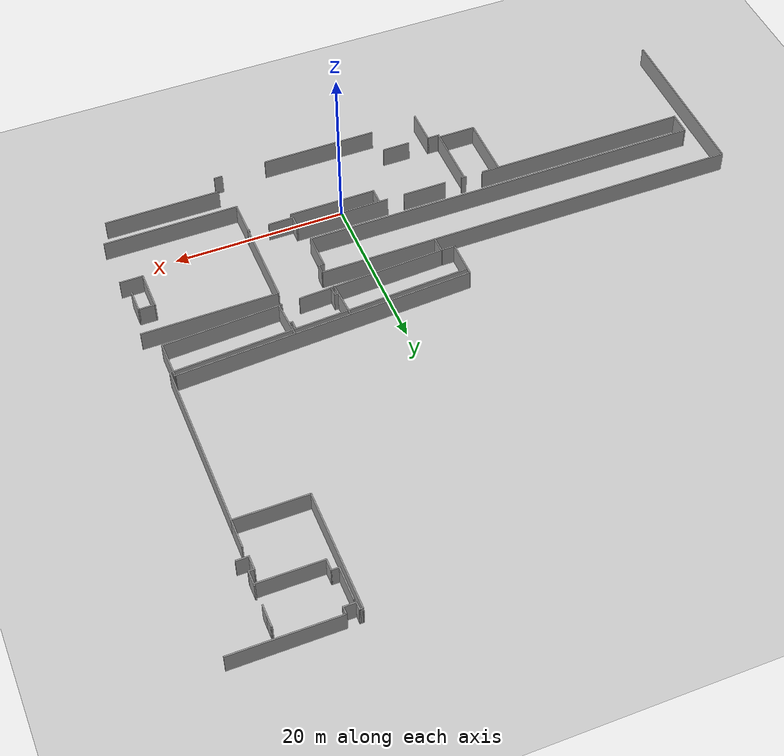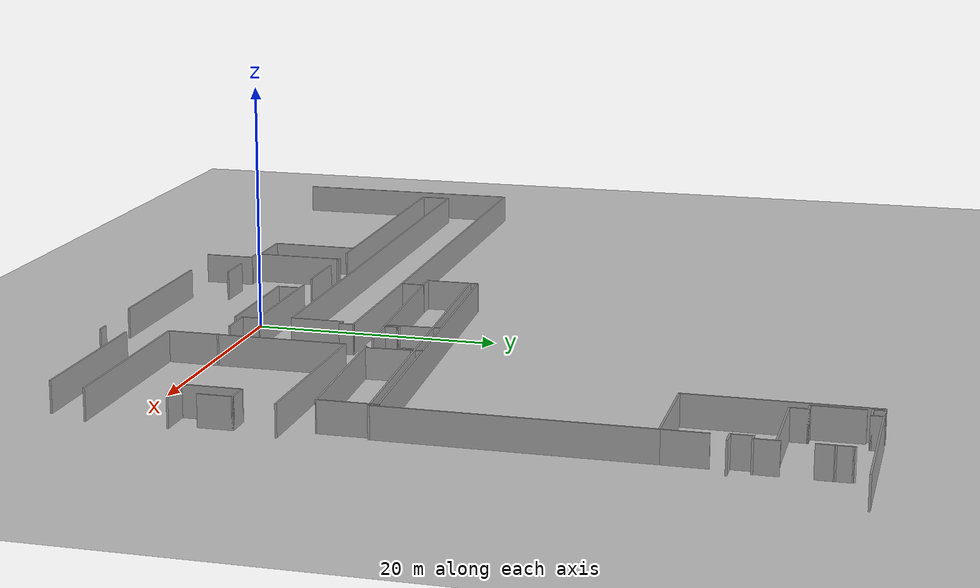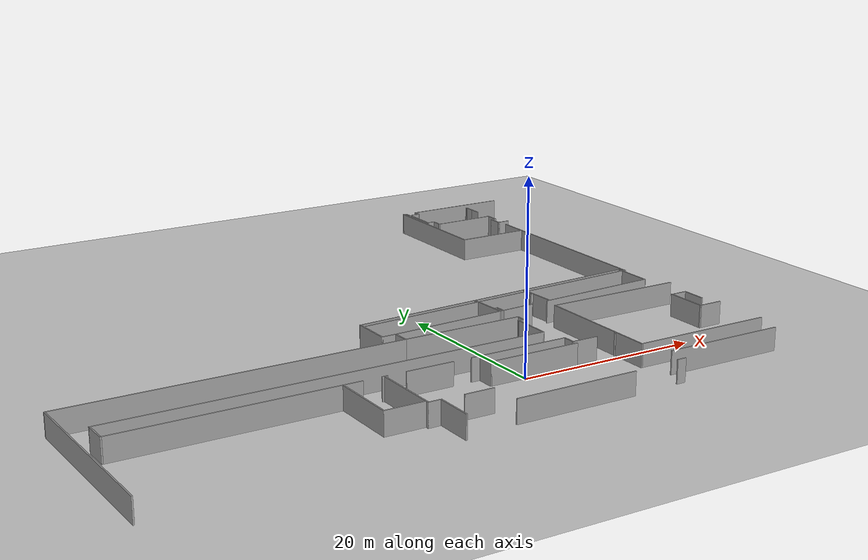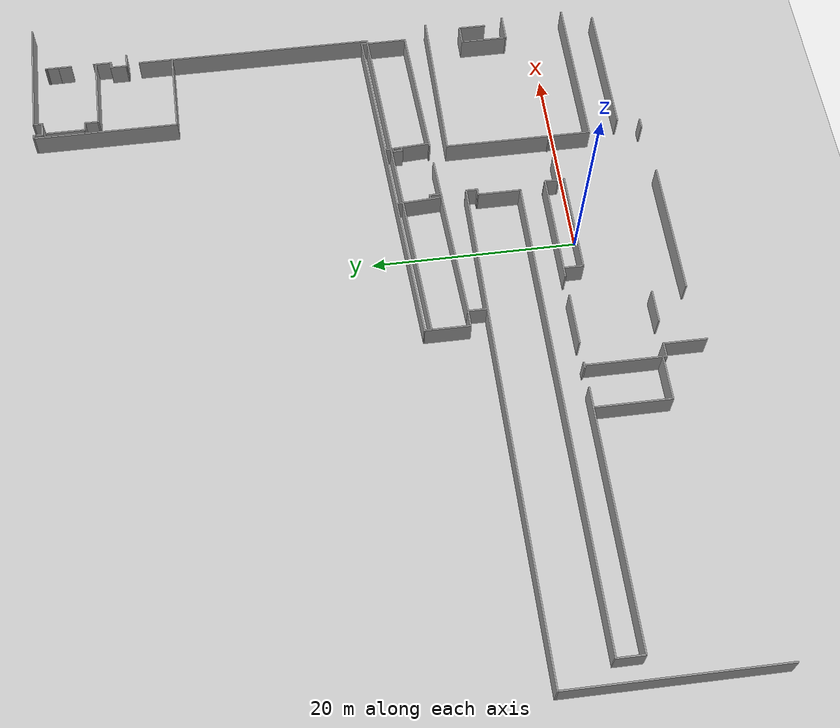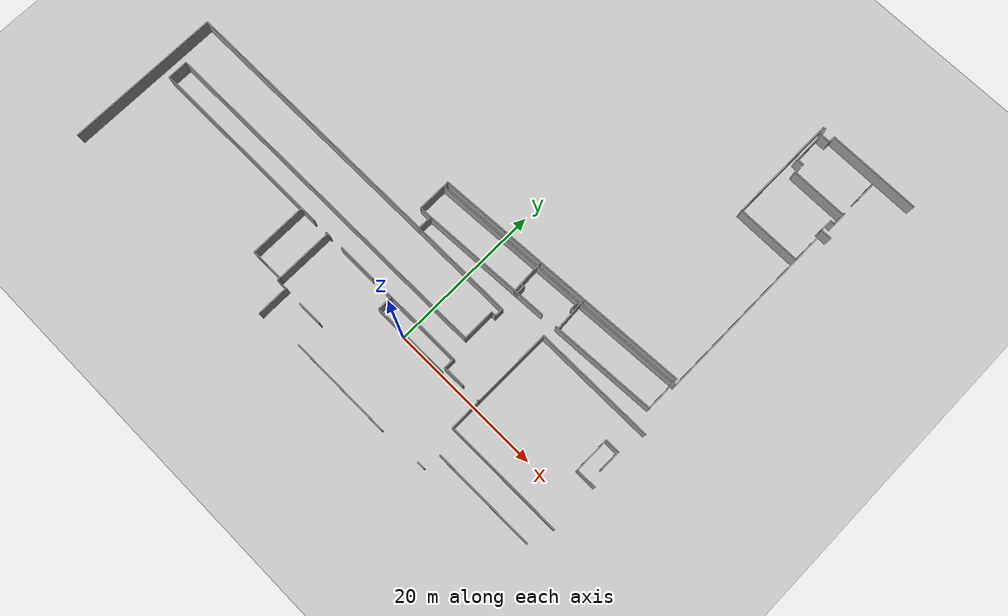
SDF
<sdf version="1.6">
 <world name="default">
  <model name="ground_plane">
   <static>1</static>
   <link name="link">
    <collision name="collision">
     <geometry><plane><normal>0 0 1</normal><size>100 100</size></plane></geometry>
     <surface><friction><ode><mu>100</mu><mu2>50</mu2></ode></friction></surface>
    </collision>
    <visual name="visual">
     <cast_shadows>0</cast_shadows>
     <geometry><plane><normal>0 0 1</normal><size>100 100</size></plane></geometry>
     <material>
      <script><uri>file://media/materials/scripts/gazebo.material</uri><name>Gazebo/Grey</name></script>
     </material>
    </visual>
   </link>
  </model>
  <model name="SEH_v11">
   <pose>0.537033 1.18809 0 0 -0 0</pose>
   <link name="Wall_101">
    <pose>8.32083 -0.436183 0 0 -0 0</pose>
    <visual name="Wall_101_Visual_0">
     <pose>-1.24875 0 1.25 0 -0 0</pose>
     <geometry><box><size>3.0025 0.15 2.5</size></box></geometry>
     <material>
      <script><uri>file://media/materials/scripts/gazebo.material</uri><name>Gazebo/Grey</name></script>
      <ambient>1 1 1 1</ambient>
     </material>
     <meta><layer>0</layer></meta>
    </visual>
    <collision name="Wall_101_Collision_0">
     <geometry><box><size>3.0025 0.15 2.5</size></box></geometry>
     <pose>-1.24875 0 1.25 0 -0 0</pose>
    </collision>
    <visual name="Wall_101_Visual_1">
     <pose>2.61125 0 1.25 0 -0 0</pose>
     <geometry><box><size>0.277496 0.15 2.5</size></box></geometry>
     <material>
      <script><uri>file://media/materials/scripts/gazebo.material</uri><name>Gazebo/Grey</name></script>
      <ambient>1 1 1 1</ambient>
     </material>
     <meta><layer>0</layer></meta>
    </visual>
    <collision name="Wall_101_Collision_1">
     <geometry><box><size>0.277496 0.15 2.5</size></box></geometry>
     <pose>2.61125 0 1.25 0 -0 0</pose>
    </collision>
   </link>
   <link name="Wall_102">
    <collision name="Wall_102_Collision">
     <geometry><box><size>4.25 0.15 2.5</size></box></geometry>
     <pose>0 0 1.25 0 -0 0</pose>
    </collision>
    <visual name="Wall_102_Visual">
     <pose>0 0 1.25 0 -0 0</pose>
     <geometry><box><size>4.25 0.15 2.5</size></box></geometry>
     <material>
      <script><uri>file://media/materials/scripts/gazebo.material</uri><name>Gazebo/Grey</name></script>
      <ambient>1 1 1 1</ambient>
     </material>
     <meta><layer>0</layer></meta>
    </visual>
    <pose>10.9958 -2.48618 0 0 0 -1.5708</pose>
   </link>
   <link name="Wall_103">
    <collision name="Wall_103_Collision">
     <geometry><box><size>15.75 0.15 2.5</size></box></geometry>
     <pose>0 0 1.25 0 -0 0</pose>
    </collision>
    <visual name="Wall_103_Visual">
     <pose>0 0 1.25 0 -0 0</pose>
     <geometry><box><size>15.75 0.15 2.5</size></box></geometry>
     <material>
      <script><uri>file://media/materials/scripts/gazebo.material</uri><name>Gazebo/Grey</name></script>
      <ambient>1 1 1 1</ambient>
     </material>
     <meta><layer>0</layer></meta>
    </visual>
    <pose>18.7958 -4.53618 0 0 -0 0</pose>
   </link>
   <link name="Wall_105">
    <collision name="Wall_105_Collision">
     <geometry><box><size>2.75 0.15 2.5</size></box></geometry>
     <pose>0 0 1.25 0 -0 0</pose>
    </collision>
    <visual name="Wall_105_Visual">
     <pose>0 0 1.25 0 -0 0</pose>
     <geometry><box><size>2.75 0.15 2.5</size></box></geometry>
     <material>
      <script><uri>file://media/materials/scripts/gazebo.material</uri><name>Gazebo/Grey</name></script>
      <ambient>1 1 1 1</ambient>
     </material>
     <meta><layer>0</layer></meta>
    </visual>
    <pose>25.2958 1.81382 0 0 -0 3.14159</pose>
   </link>
   <link name="Wall_106">
    <collision name="Wall_106_Collision">
     <geometry><box><size>4.75 0.15 2.5</size></box></geometry>
     <pose>0 0 1.25 0 -0 0</pose>
    </collision>
    <visual name="Wall_106_Visual">
     <pose>0 0 1.25 0 -0 0</pose>
     <geometry><box><size>4.75 0.15 2.5</size></box></geometry>
     <material>
      <script><uri>file://media/materials/scripts/gazebo.material</uri><name>Gazebo/Grey</name></script>
      <ambient>1 1 1 1</ambient>
     </material>
     <meta><layer>0</layer></meta>
    </visual>
    <pose>23.9958 4.11382 0 0 -0 1.5708</pose>
   </link>
   <link name="Wall_107">
    <collision name="Wall_107_Collision">
     <geometry><box><size>2 0.15 2.5</size></box></geometry>
     <pose>0 0 1.25 0 -0 0</pose>
    </collision>
    <visual name="Wall_107_Visual">
     <pose>0 0 1.25 0 -0 0</pose>
     <geometry><box><size>2 0.15 2.5</size></box></geometry>
     <material>
      <script><uri>file://media/materials/scripts/gazebo.material</uri><name>Gazebo/Grey</name></script>
      <ambient>1 1 1 1</ambient>
     </material>
     <meta><layer>0</layer></meta>
    </visual>
    <pose>24.9208 6.41382 0 0 -0 0</pose>
   </link>
   <link name="Wall_108">
    <collision name="Wall_108_Collision">
     <geometry><box><size>2.75 0.15 2.5</size></box></geometry>
     <pose>0 0 1.25 0 -0 0</pose>
    </collision>
    <visual name="Wall_108_Visual">
     <pose>0 0 1.25 0 -0 0</pose>
     <geometry><box><size>2.75 0.15 2.5</size></box></geometry>
     <material>
      <script><uri>file://media/materials/scripts/gazebo.material</uri><name>Gazebo/Grey</name></script>
      <ambient>1 1 1 1</ambient>
     </material>
     <meta><layer>0</layer></meta>
    </visual>
    <pose>25.8458 5.11382 0 0 0 -1.5708</pose>
   </link>
   <link name="Wall_167">
    <collision name="Wall_167_Collision">
     <geometry><box><size>13.5 0.15 2.5</size></box></geometry>
     <pose>0 0 1.25 0 -0 0</pose>
    </collision>
    <visual name="Wall_167_Visual">
     <pose>0 0 1.25 0 -0 0</pose>
     <geometry><box><size>13.5 0.15 2.5</size></box></geometry>
     <material>
      <script><uri>file://media/materials/scripts/gazebo.material</uri><name>Gazebo/Grey</name></script>
      <ambient>1 1 1 1</ambient>
     </material>
     <meta><layer>0</layer></meta>
    </visual>
    <pose>18.8711 -7.64779 0 0 -0 0</pose>
   </link>
   <link name="Wall_170">
    <collision name="Wall_170_Collision">
     <geometry><box><size>1 0.15 2.5</size></box></geometry>
     <pose>0 0 1.25 0 -0 0</pose>
    </collision>
    <visual name="Wall_170_Visual">
     <pose>0 0 1.25 0 -0 0</pose>
     <geometry><box><size>1 0.15 2.5</size></box></geometry>
     <material>
      <script><uri>file://media/materials/scripts/gazebo.material</uri><name>Gazebo/Grey</name></script>
      <ambient>1 1 1 1</ambient>
     </material>
     <meta><layer>0</layer></meta>
    </visual>
    <pose>11.4592 -9.91088 0 0 -0 3.14159</pose>
   </link>
   <link name="Wall_182">
    <collision name="Wall_182_Collision">
     <geometry><box><size>1.5 0.15 2.5</size></box></geometry>
     <pose>0 0 1.25 0 -0 0</pose>
    </collision>
    <visual name="Wall_182_Visual">
     <pose>0 0 1.25 0 -0 0</pose>
     <geometry><box><size>1.5 0.15 2.5</size></box></geometry>
     <material>
      <script><uri>file://media/materials/scripts/gazebo.material</uri><name>Gazebo/Grey</name></script>
      <ambient>1 1 1 1</ambient>
     </material>
     <meta><layer>0</layer></meta>
    </visual>
    <pose>5.64583 0.238817 0 0 -0 1.5708</pose>
   </link>
   <link name="Wall_183">
    <pose>-18.4042 0.913817 0 0 -0 3.14159</pose>
    <visual name="Wall_183_Visual_0">
     <pose>-18.5546 0 1.25 0 -0 0</pose>
     <geometry><box><size>11.1407 0.15 2.5</size></box></geometry>
     <material>
      <script><uri>file://media/materials/scripts/gazebo.material</uri><name>Gazebo/Grey</name></script>
      <ambient>1 1 1 1</ambient>
     </material>
     <meta><layer>0</layer></meta>
    </visual>
    <collision name="Wall_183_Collision_0">
     <geometry><box><size>11.1407 0.15 2.5</size></box></geometry>
     <pose>-18.5546 0 1.25 0 -0 0</pose>
    </collision>
    <visual name="Wall_183_Visual_1">
     <pose>-8.37783 0 1.25 0 -0 0</pose>
     <geometry><box><size>5.21291 0.15 2.5</size></box></geometry>
     <material>
      <script><uri>file://media/materials/scripts/gazebo.material</uri><name>Gazebo/Grey</name></script>
      <ambient>1 1 1 1</ambient>
     </material>
     <meta><layer>0</layer></meta>
    </visual>
    <collision name="Wall_183_Collision_1">
     <geometry><box><size>5.21291 0.15 2.5</size></box></geometry>
     <pose>-8.37783 0 1.25 0 -0 0</pose>
    </collision>
    <visual name="Wall_183_Visual_2">
     <pose>-3.46175 0 1.25 0 -0 0</pose>
     <geometry><box><size>0.619251 0.15 2.5</size></box></geometry>
     <material>
      <script><uri>file://media/materials/scripts/gazebo.material</uri><name>Gazebo/Grey</name></script>
      <ambient>1 1 1 1</ambient>
     </material>
     <meta><layer>0</layer></meta>
    </visual>
    <collision name="Wall_183_Collision_2">
     <geometry><box><size>0.619251 0.15 2.5</size></box></geometry>
     <pose>-3.46175 0 1.25 0 -0 0</pose>
    </collision>
    <visual name="Wall_183_Visual_3">
     <pose>11.4864 0 1.25 0 -0 0</pose>
     <geometry><box><size>25.2771 0.15 2.5</size></box></geometry>
     <material>
      <script><uri>file://media/materials/scripts/gazebo.material</uri><name>Gazebo/Grey</name></script>
      <ambient>1 1 1 1</ambient>
     </material>
     <meta><layer>0</layer></meta>
    </visual>
    <collision name="Wall_183_Collision_3">
     <geometry><box><size>25.2771 0.15 2.5</size></box></geometry>
     <pose>11.4864 0 1.25 0 -0 0</pose>
    </collision>
   </link>
   <link name="Wall_184">
    <collision name="Wall_184_Collision">
     <geometry><box><size>2.75 0.15 2.5</size></box></geometry>
     <pose>0 0 1.25 0 -0 0</pose>
    </collision>
    <visual name="Wall_184_Visual">
     <pose>0 0 1.25 0 -0 0</pose>
     <geometry><box><size>2.75 0.15 2.5</size></box></geometry>
     <material>
      <script><uri>file://media/materials/scripts/gazebo.material</uri><name>Gazebo/Grey</name></script>
      <ambient>1 1 1 1</ambient>
     </material>
     <meta><layer>0</layer></meta>
    </visual>
    <pose>-42.4542 2.21382 0 0 -0 1.5708</pose>
   </link>
   <link name="Wall_185">
    <collision name="Wall_185_Collision">
     <geometry><box><size>47.5 0.15 2.5</size></box></geometry>
     <pose>0 0 1.25 0 -0 0</pose>
    </collision>
    <visual name="Wall_185_Visual">
     <pose>0 0 1.25 0 -0 0</pose>
     <geometry><box><size>47.5 0.15 2.5</size></box></geometry>
     <material>
      <script><uri>file://media/materials/scripts/gazebo.material</uri><name>Gazebo/Grey</name></script>
      <ambient>1 1 1 1</ambient>
     </material>
     <meta><layer>0</layer></meta>
    </visual>
    <pose>-18.7792 3.51382 0 0 -0 0</pose>
   </link>
   <link name="Wall_186">
    <collision name="Wall_186_Collision">
     <geometry><box><size>4.25 0.15 2.5</size></box></geometry>
     <pose>0 0 1.25 0 -0 0</pose>
    </collision>
    <visual name="Wall_186_Visual">
     <pose>0 0 1.25 0 -0 0</pose>
     <geometry><box><size>4.25 0.15 2.5</size></box></geometry>
     <material>
      <script><uri>file://media/materials/scripts/gazebo.material</uri><name>Gazebo/Grey</name></script>
      <ambient>1 1 1 1</ambient>
     </material>
     <meta><layer>0</layer></meta>
    </visual>
    <pose>4.89583 5.56382 0 0 -0 1.5708</pose>
   </link>
   <link name="Wall_188">
    <collision name="Wall_188_Collision">
     <geometry><box><size>0.25 0.15 2.5</size></box></geometry>
     <pose>0 0 1.25 0 -0 0</pose>
    </collision>
    <visual name="Wall_188_Visual">
     <pose>0 0 1.25 0 -0 0</pose>
     <geometry><box><size>0.25 0.15 2.5</size></box></geometry>
     <material>
      <script><uri>file://media/materials/scripts/gazebo.material</uri><name>Gazebo/Grey</name></script>
      <ambient>1 1 1 1</ambient>
     </material>
     <meta><layer>0</layer></meta>
    </visual>
    <pose>4.89583 7.66382 0 0 -0 1.5708</pose>
   </link>
   <link name="Wall_189">
    <collision name="Wall_189_Collision">
     <geometry><box><size>0.75 0.15 2.5</size></box></geometry>
     <pose>0 0 1.25 0 -0 0</pose>
    </collision>
    <visual name="Wall_189_Visual">
     <pose>0 0 1.25 0 -0 0</pose>
     <geometry><box><size>0.75 0.15 2.5</size></box></geometry>
     <material>
      <script><uri>file://media/materials/scripts/gazebo.material</uri><name>Gazebo/Grey</name></script>
      <ambient>1 1 1 1</ambient>
     </material>
     <meta><layer>0</layer></meta>
    </visual>
    <pose>5.19583 7.71382 0 0 -0 0</pose>
   </link>
   <link name="Wall_190">
    <collision name="Wall_190_Collision">
     <geometry><box><size>1.25 0.15 2.5</size></box></geometry>
     <pose>0 0 1.25 0 -0 0</pose>
    </collision>
    <visual name="Wall_190_Visual">
     <pose>0 0 1.25 0 -0 0</pose>
     <geometry><box><size>1.25 0.15 2.5</size></box></geometry>
     <material>
      <script><uri>file://media/materials/scripts/gazebo.material</uri><name>Gazebo/Grey</name></script>
      <ambient>1 1 1 1</ambient>
     </material>
     <meta><layer>0</layer></meta>
    </visual>
    <pose>5.49583 8.26382 0 0 -0 1.5708</pose>
   </link>
   <link name="Wall_191">
    <collision name="Wall_191_Collision">
     <geometry><box><size>13.6365 0.15 2.5</size></box></geometry>
     <pose>0 0 1.25 0 -0 0</pose>
    </collision>
    <visual name="Wall_191_Visual">
     <pose>0 0 1.25 0 -0 0</pose>
     <geometry><box><size>13.6365 0.15 2.5</size></box></geometry>
     <material>
      <script><uri>file://media/materials/scripts/gazebo.material</uri><name>Gazebo/Grey</name></script>
      <ambient>1 1 1 1</ambient>
     </material>
     <meta><layer>0</layer></meta>
    </visual>
    <pose>-1.24739 8.82623 0 0 -0 3.13975</pose>
   </link>
   <link name="Wall_194">
    <pose>8.49359 11.5096 0 0 0 -3.09183</pose>
    <visual name="Wall_194_Visual_0">
     <pose>-9.63088 0 1.25 0 -0 0</pose>
     <geometry><box><size>13.8975 0.15 2.5</size></box></geometry>
     <material>
      <script><uri>file://media/materials/scripts/gazebo.material</uri><name>Gazebo/Grey</name></script>
      <ambient>1 1 1 1</ambient>
     </material>
     <meta><layer>0</layer></meta>
    </visual>
    <collision name="Wall_194_Collision_0">
     <geometry><box><size>13.8975 0.15 2.5</size></box></geometry>
     <pose>-9.63088 0 1.25 0 -0 0</pose>
    </collision>
    <visual name="Wall_194_Visual_1">
     <pose>7.94874 0 1.25 0 -0 0</pose>
     <geometry><box><size>17.2618 0.15 2.5</size></box></geometry>
     <material>
      <script><uri>file://media/materials/scripts/gazebo.material</uri><name>Gazebo/Grey</name></script>
      <ambient>1 1 1 1</ambient>
     </material>
     <meta><layer>0</layer></meta>
    </visual>
    <collision name="Wall_194_Collision_1">
     <geometry><box><size>17.2618 0.15 2.5</size></box></geometry>
     <pose>7.94874 0 1.25 0 -0 0</pose>
    </collision>
   </link>
   <link name="Wall_196">
    <collision name="Wall_196_Collision">
     <geometry><box><size>4.07841 0.15 2.5</size></box></geometry>
     <pose>0 0 1.25 0 -0 0</pose>
    </collision>
    <visual name="Wall_196_Visual">
     <pose>0 0 1.25 0 -0 0</pose>
     <geometry><box><size>4.07841 0.15 2.5</size></box></geometry>
     <material>
      <script><uri>file://media/materials/scripts/gazebo.material</uri><name>Gazebo/Grey</name></script>
      <ambient>1 1 1 1</ambient>
     </material>
     <meta><layer>0</layer></meta>
    </visual>
    <pose>24.9651 14.2947 0 0 0 -1.56432</pose>
   </link>
   <link name="Wall_214">
    <collision name="Wall_214_Collision">
     <geometry><box><size>3.5 0.15 2.5</size></box></geometry>
     <pose>0 0 1.25 0 -0 0</pose>
    </collision>
    <visual name="Wall_214_Visual">
     <pose>0 0 1.25 0 -0 0</pose>
     <geometry><box><size>3.5 0.15 2.5</size></box></geometry>
     <material>
      <script><uri>file://media/materials/scripts/gazebo.material</uri><name>Gazebo/Grey</name></script>
      <ambient>1 1 1 1</ambient>
     </material>
     <meta><layer>0</layer></meta>
    </visual>
    <pose>25.3023 38.2839 0 0 -0 1.5708</pose>
   </link>
   <link name="Wall_217">
    <collision name="Wall_217_Collision">
     <geometry><box><size>1.5 0.15 2.5</size></box></geometry>
     <pose>0 0 1.25 0 -0 0</pose>
    </collision>
    <visual name="Wall_217_Visual">
     <pose>0 0 1.25 0 -0 0</pose>
     <geometry><box><size>1.5 0.15 2.5</size></box></geometry>
     <material>
      <script><uri>file://media/materials/scripts/gazebo.material</uri><name>Gazebo/Grey</name></script>
      <ambient>1 1 1 1</ambient>
     </material>
     <meta><layer>0</layer></meta>
    </visual>
    <pose>25.7273 41.3089 0 0 -0 3.14159</pose>
   </link>
   <link name="Wall_218">
    <collision name="Wall_218_Collision">
     <geometry><box><size>1.75 0.15 2.5</size></box></geometry>
     <pose>0 0 1.25 0 -0 0</pose>
    </collision>
    <visual name="Wall_218_Visual">
     <pose>0 0 1.25 0 -0 0</pose>
     <geometry><box><size>1.75 0.15 2.5</size></box></geometry>
     <material>
      <script><uri>file://media/materials/scripts/gazebo.material</uri><name>Gazebo/Grey</name></script>
      <ambient>1 1 1 1</ambient>
     </material>
     <meta><layer>0</layer></meta>
    </visual>
    <pose>25.0523 42.1089 0 0 -0 1.5708</pose>
   </link>
   <link name="Wall_220">
    <pose>25.6412 45.6743 0 0 -0 1.5708</pose>
    <visual name="Wall_220_Visual_0">
     <pose>-1.83918 0 1.25 0 -0 0</pose>
     <geometry><box><size>1.82164 0.15 2.5</size></box></geometry>
     <material>
      <script><uri>file://media/materials/scripts/gazebo.material</uri><name>Gazebo/Grey</name></script>
      <ambient>1 1 1 1</ambient>
     </material>
     <meta><layer>0</layer></meta>
    </visual>
    <collision name="Wall_220_Collision_0">
     <geometry><box><size>1.82164 0.15 2.5</size></box></geometry>
     <pose>-1.83918 0 1.25 0 -0 0</pose>
    </collision>
    <visual name="Wall_220_Visual_1">
     <pose>2.02732 0 1.25 0 -0 0</pose>
     <geometry><box><size>1.44535 0.15 2.5</size></box></geometry>
     <material>
      <script><uri>file://media/materials/scripts/gazebo.material</uri><name>Gazebo/Grey</name></script>
      <ambient>1 1 1 1</ambient>
     </material>
     <meta><layer>0</layer></meta>
    </visual>
    <collision name="Wall_220_Collision_1">
     <geometry><box><size>1.44535 0.15 2.5</size></box></geometry>
     <pose>2.02732 0 1.25 0 -0 0</pose>
    </collision>
   </link>
   <link name="Wall_228">
    <collision name="Wall_228_Collision">
     <geometry><box><size>1.34271 0.15 2.5</size></box></geometry>
     <pose>0 0 1.25 0 -0 0</pose>
    </collision>
    <visual name="Wall_228_Visual">
     <pose>0 0 1.25 0 -0 0</pose>
     <geometry><box><size>1.34271 0.15 2.5</size></box></geometry>
     <material>
      <script><uri>file://media/materials/scripts/gazebo.material</uri><name>Gazebo/Grey</name></script>
      <ambient>1 1 1 1</ambient>
     </material>
     <meta><layer>0</layer></meta>
    </visual>
    <pose>25.6365 48.9178 0 0 -0 1.57857</pose>
   </link>
   <link name="Wall_231">
    <collision name="Wall_231_Collision">
     <geometry><box><size>0.15 0.15 2.5</size></box></geometry>
     <pose>0 0 1.25 0 -0 0</pose>
    </collision>
    <visual name="Wall_231_Visual">
     <pose>0 0 1.25 0 -0 0</pose>
     <geometry><box><size>0.15 0.15 2.5</size></box></geometry>
     <material>
      <script><uri>file://media/materials/scripts/gazebo.material</uri><name>Gazebo/Grey</name></script>
      <ambient>1 1 1 1</ambient>
     </material>
     <meta><layer>0</layer></meta>
    </visual>
    <pose>25.6319 49.5142 0 0 -0 0</pose>
   </link>
   <link name="Wall_232">
    <collision name="Wall_232_Collision">
     <geometry><box><size>0.25 0.15 2.5</size></box></geometry>
     <pose>0 0 1.25 0 -0 0</pose>
    </collision>
    <visual name="Wall_232_Visual">
     <pose>0 0 1.25 0 -0 0</pose>
     <geometry><box><size>0.25 0.15 2.5</size></box></geometry>
     <material>
      <script><uri>file://media/materials/scripts/gazebo.material</uri><name>Gazebo/Grey</name></script>
      <ambient>1 1 1 1</ambient>
     </material>
     <meta><layer>0</layer></meta>
    </visual>
    <pose>25.619 49.5625 0 0 -0 1.8326</pose>
   </link>
   <link name="Wall_276">
    <collision name="Wall_276_Collision">
     <geometry><box><size>7.5 0.15 2.5</size></box></geometry>
     <pose>0 0 1.25 0 -0 0</pose>
    </collision>
    <visual name="Wall_276_Visual">
     <pose>0 0 1.25 0 -0 0</pose>
     <geometry><box><size>7.5 0.15 2.5</size></box></geometry>
     <material>
      <script><uri>file://media/materials/scripts/gazebo.material</uri><name>Gazebo/Grey</name></script>
      <ambient>1 1 1 1</ambient>
     </material>
     <meta><layer>0</layer></meta>
    </visual>
    <pose>21.9293 44.4714 0 0 -0 3.14159</pose>
   </link>
   <link name="Wall_277">
    <collision name="Wall_277_Collision">
     <geometry><box><size>1.5 0.15 2.5</size></box></geometry>
     <pose>0 0 1.25 0 -0 0</pose>
    </collision>
    <visual name="Wall_277_Visual">
     <pose>0 0 1.25 0 -0 0</pose>
     <geometry><box><size>1.5 0.15 2.5</size></box></geometry>
     <material>
      <script><uri>file://media/materials/scripts/gazebo.material</uri><name>Gazebo/Grey</name></script>
      <ambient>1 1 1 1</ambient>
     </material>
     <meta><layer>0</layer></meta>
    </visual>
    <pose>18.2543 45.1464 0 0 -0 1.5708</pose>
   </link>
   <link name="Wall_278">
    <collision name="Wall_278_Collision">
     <geometry><box><size>1 0.15 2.5</size></box></geometry>
     <pose>0 0 1.25 0 -0 0</pose>
    </collision>
    <visual name="Wall_278_Visual">
     <pose>0 0 1.25 0 -0 0</pose>
     <geometry><box><size>1 0.15 2.5</size></box></geometry>
     <material>
      <script><uri>file://media/materials/scripts/gazebo.material</uri><name>Gazebo/Grey</name></script>
      <ambient>1 1 1 1</ambient>
     </material>
     <meta><layer>0</layer></meta>
    </visual>
    <pose>17.8293 45.8214 0 0 -0 3.14159</pose>
   </link>
   <link name="Wall_279">
    <collision name="Wall_279_Collision">
     <geometry><box><size>4 0.15 2.5</size></box></geometry>
     <pose>0 0 1.25 0 -0 0</pose>
    </collision>
    <visual name="Wall_279_Visual">
     <pose>0 0 1.25 0 -0 0</pose>
     <geometry><box><size>4 0.15 2.5</size></box></geometry>
     <material>
      <script><uri>file://media/materials/scripts/gazebo.material</uri><name>Gazebo/Grey</name></script>
      <ambient>1 1 1 1</ambient>
     </material>
     <meta><layer>0</layer></meta>
    </visual>
    <pose>17.4043 47.7464 0 0 -0 1.5708</pose>
   </link>
   <link name="Wall_281">
    <collision name="Wall_281_Collision">
     <geometry><box><size>0.75 0.15 2.5</size></box></geometry>
     <pose>0 0 1.25 0 -0 0</pose>
    </collision>
    <visual name="Wall_281_Visual">
     <pose>0 0 1.25 0 -0 0</pose>
     <geometry><box><size>0.75 0.15 2.5</size></box></geometry>
     <material>
      <script><uri>file://media/materials/scripts/gazebo.material</uri><name>Gazebo/Grey</name></script>
      <ambient>1 1 1 1</ambient>
     </material>
     <meta><layer>0</layer></meta>
    </visual>
    <pose>25.3523 42.9089 0 0 -0 0</pose>
   </link>
   <link name="Wall_283">
    <collision name="Wall_283_Collision">
     <geometry><box><size>10.5 0.15 2.5</size></box></geometry>
     <pose>0 0 1.25 0 -0 0</pose>
    </collision>
    <visual name="Wall_283_Visual">
     <pose>0 0 1.25 0 -0 0</pose>
     <geometry><box><size>10.5 0.15 2.5</size></box></geometry>
     <material>
      <script><uri>file://media/materials/scripts/gazebo.material</uri><name>Gazebo/Grey</name></script>
      <ambient>1 1 1 1</ambient>
     </material>
     <meta><layer>0</layer></meta>
    </visual>
    <pose>10.9958 4.73882 0 0 -0 1.5708</pose>
   </link>
   <link name="Wall_284">
    <collision name="Wall_284_Collision">
     <geometry><box><size>15.75 0.15 2.5</size></box></geometry>
     <pose>0 0 1.25 0 -0 0</pose>
    </collision>
    <visual name="Wall_284_Visual">
     <pose>0 0 1.25 0 -0 0</pose>
     <geometry><box><size>15.75 0.15 2.5</size></box></geometry>
     <material>
      <script><uri>file://media/materials/scripts/gazebo.material</uri><name>Gazebo/Grey</name></script>
      <ambient>1 1 1 1</ambient>
     </material>
     <meta><layer>0</layer></meta>
    </visual>
    <pose>18.7958 9.91382 0 0 -0 0</pose>
   </link>
   <link name="Wall_376">
    <collision name="Wall_376_Collision">
     <geometry><box><size>4.59436 0.15 2.5</size></box></geometry>
     <pose>0 0 1.25 0 -0 0</pose>
    </collision>
    <visual name="Wall_376_Visual">
     <pose>0 0 1.25 0 -0 0</pose>
     <geometry><box><size>4.59436 0.15 2.5</size></box></geometry>
     <material>
      <script><uri>file://media/materials/scripts/gazebo.material</uri><name>Gazebo/Grey</name></script>
      <ambient>1 1 1 1</ambient>
     </material>
     <meta><layer>0</layer></meta>
    </visual>
    <pose>11.4293 13.8971 0 0 0 -1.51333</pose>
   </link>
   <link name="Wall_382">
    <collision name="Wall_382_Collision">
     <geometry><box><size>4.6298 0.15 2.5</size></box></geometry>
     <pose>0 0 1.25 0 -0 0</pose>
    </collision>
    <visual name="Wall_382_Visual">
     <pose>0 0 1.25 0 -0 0</pose>
     <geometry><box><size>4.6298 0.15 2.5</size></box></geometry>
     <material>
      <script><uri>file://media/materials/scripts/gazebo.material</uri><name>Gazebo/Grey</name></script>
      <ambient>1 1 1 1</ambient>
     </material>
     <meta><layer>0</layer></meta>
    </visual>
    <pose>4.88889 13.546 0 0 0 -1.51772</pose>
   </link>
   <link name="Wall_384">
    <collision name="Wall_384_Collision">
     <geometry><box><size>0.5 0.15 2.5</size></box></geometry>
     <pose>0 0 1.25 0 -0 0</pose>
    </collision>
    <visual name="Wall_384_Visual">
     <pose>0 0 1.25 0 -0 0</pose>
     <geometry><box><size>0.5 0.15 2.5</size></box></geometry>
     <material>
      <script><uri>file://media/materials/scripts/gazebo.material</uri><name>Gazebo/Grey</name></script>
      <ambient>1 1 1 1</ambient>
     </material>
     <meta><layer>0</layer></meta>
    </visual>
    <pose>5.21068 12.4416 0 0 -0 0</pose>
   </link>
   <link name="Wall_385">
    <collision name="Wall_385_Collision">
     <geometry><box><size>1.25 0.15 2.5</size></box></geometry>
     <pose>0 0 1.25 0 -0 0</pose>
    </collision>
    <visual name="Wall_385_Visual">
     <pose>0 0 1.25 0 -0 0</pose>
     <geometry><box><size>1.25 0.15 2.5</size></box></geometry>
     <material>
      <script><uri>file://media/materials/scripts/gazebo.material</uri><name>Gazebo/Grey</name></script>
      <ambient>1 1 1 1</ambient>
     </material>
     <meta><layer>0</layer></meta>
    </visual>
    <pose>5.38568 11.8916 0 0 0 -1.5708</pose>
   </link>
   <link name="Wall_387">
    <collision name="Wall_387_Collision">
     <geometry><box><size>0.5 0.15 2.5</size></box></geometry>
     <pose>0 0 1.25 0 -0 0</pose>
    </collision>
    <visual name="Wall_387_Visual">
     <pose>0 0 1.25 0 -0 0</pose>
     <geometry><box><size>0.5 0.15 2.5</size></box></geometry>
     <material>
      <script><uri>file://media/materials/scripts/gazebo.material</uri><name>Gazebo/Grey</name></script>
      <ambient>1 1 1 1</ambient>
     </material>
     <meta><layer>0</layer></meta>
    </visual>
    <pose>11.1795 15.3074 0 0 -0 3.14159</pose>
   </link>
   <link name="Wall_388">
    <collision name="Wall_388_Collision">
     <geometry><box><size>1 0.15 2.5</size></box></geometry>
     <pose>0 0 1.25 0 -0 0</pose>
    </collision>
    <visual name="Wall_388_Visual">
     <pose>0 0 1.25 0 -0 0</pose>
     <geometry><box><size>1 0.15 2.5</size></box></geometry>
     <material>
      <script><uri>file://media/materials/scripts/gazebo.material</uri><name>Gazebo/Grey</name></script>
      <ambient>1 1 1 1</ambient>
     </material>
     <meta><layer>0</layer></meta>
    </visual>
    <pose>11.0045 14.8824 0 0 0 -1.5708</pose>
   </link>
   <link name="Wall_389">
    <collision name="Wall_389_Collision">
     <geometry><box><size>0.5 0.15 2.5</size></box></geometry>
     <pose>0 0 1.25 0 -0 0</pose>
    </collision>
    <visual name="Wall_389_Visual">
     <pose>0 0 1.25 0 -0 0</pose>
     <geometry><box><size>0.5 0.15 2.5</size></box></geometry>
     <material>
      <script><uri>file://media/materials/scripts/gazebo.material</uri><name>Gazebo/Grey</name></script>
      <ambient>1 1 1 1</ambient>
     </material>
     <meta><layer>0</layer></meta>
    </visual>
    <pose>11.1795 14.4574 0 0 -0 0</pose>
   </link>
   <link name="Wall_391">
    <collision name="Wall_391_Collision">
     <geometry><box><size>34.6725 0.15 2.5</size></box></geometry>
     <pose>0 0 1.25 0 -0 0</pose>
    </collision>
    <visual name="Wall_391_Visual">
     <pose>0 0 1.25 0 -0 0</pose>
     <geometry><box><size>34.6725 0.15 2.5</size></box></geometry>
     <material>
      <script><uri>file://media/materials/scripts/gazebo.material</uri><name>Gazebo/Grey</name></script>
      <ambient>1 1 1 1</ambient>
     </material>
     <meta><layer>0</layer></meta>
    </visual>
    <pose>7.71616 15.3288 0 0 -0 0.053907</pose>
   </link>
   <link name="Wall_429">
    <collision name="Wall_429_Collision">
     <geometry><box><size>7.5 0.15 2.5</size></box></geometry>
     <pose>0 0 1.25 0 -0 0</pose>
    </collision>
    <visual name="Wall_429_Visual">
     <pose>0 0 1.25 0 -0 0</pose>
     <geometry><box><size>7.5 0.15 2.5</size></box></geometry>
     <material>
      <script><uri>file://media/materials/scripts/gazebo.material</uri><name>Gazebo/Grey</name></script>
      <ambient>1 1 1 1</ambient>
     </material>
     <meta><layer>0</layer></meta>
    </visual>
    <pose>-19.3349 -2.79531 0 0 0 -1.5708</pose>
   </link>
   <link name="Wall_430">
    <collision name="Wall_430_Collision">
     <geometry><box><size>4.5 0.15 2.5</size></box></geometry>
     <pose>0 0 1.25 0 -0 0</pose>
    </collision>
    <visual name="Wall_430_Visual">
     <pose>0 0 1.25 0 -0 0</pose>
     <geometry><box><size>4.5 0.15 2.5</size></box></geometry>
     <material>
      <script><uri>file://media/materials/scripts/gazebo.material</uri><name>Gazebo/Grey</name></script>
      <ambient>1 1 1 1</ambient>
     </material>
     <meta><layer>0</layer></meta>
    </visual>
    <pose>-17.1599 -6.47031 0 0 -0 0</pose>
   </link>
   <link name="Wall_431">
    <collision name="Wall_431_Collision">
     <geometry><box><size>7.5 0.15 2.5</size></box></geometry>
     <pose>0 0 1.25 0 -0 0</pose>
    </collision>
    <visual name="Wall_431_Visual">
     <pose>0 0 1.25 0 -0 0</pose>
     <geometry><box><size>7.5 0.15 2.5</size></box></geometry>
     <material>
      <script><uri>file://media/materials/scripts/gazebo.material</uri><name>Gazebo/Grey</name></script>
      <ambient>1 1 1 1</ambient>
     </material>
     <meta><layer>0</layer></meta>
    </visual>
    <pose>-14.9849 -2.79531 0 0 -0 1.5708</pose>
   </link>
   <link name="Wall_450">
    <collision name="Wall_450_Collision">
     <geometry><box><size>3.25 0.15 2.5</size></box></geometry>
     <pose>0 0 1.25 0 -0 0</pose>
    </collision>
    <visual name="Wall_450_Visual">
     <pose>0 0 1.25 0 -0 0</pose>
     <geometry><box><size>3.25 0.15 2.5</size></box></geometry>
     <material>
      <script><uri>file://media/materials/scripts/gazebo.material</uri><name>Gazebo/Grey</name></script>
      <ambient>1 1 1 1</ambient>
     </material>
     <meta><layer>0</layer></meta>
    </visual>
    <pose>-9.61585 -6.91068 0 0 -0 0</pose>
   </link>
   <link name="Wall_452">
    <collision name="Wall_452_Collision">
     <geometry><box><size>0.5 0.15 2.5</size></box></geometry>
     <pose>0 0 1.25 0 -0 0</pose>
    </collision>
    <visual name="Wall_452_Visual">
     <pose>0 0 1.25 0 -0 0</pose>
     <geometry><box><size>0.5 0.15 2.5</size></box></geometry>
     <material>
      <script><uri>file://media/materials/scripts/gazebo.material</uri><name>Gazebo/Grey</name></script>
      <ambient>1 1 1 1</ambient>
     </material>
     <meta><layer>0</layer></meta>
    </visual>
    <pose>-14.9849 -6.64531 0 0 0 -1.5708</pose>
   </link>
   <link name="Wall_453">
    <collision name="Wall_453_Collision">
     <geometry><box><size>1.5 0.15 2.5</size></box></geometry>
     <pose>0 0 1.25 0 -0 0</pose>
    </collision>
    <visual name="Wall_453_Visual">
     <pose>0 0 1.25 0 -0 0</pose>
     <geometry><box><size>1.5 0.15 2.5</size></box></geometry>
     <material>
      <script><uri>file://media/materials/scripts/gazebo.material</uri><name>Gazebo/Grey</name></script>
      <ambient>1 1 1 1</ambient>
     </material>
     <meta><layer>0</layer></meta>
    </visual>
    <pose>-14.3099 -6.82031 0 0 -0 0</pose>
   </link>
   <link name="Wall_454">
    <collision name="Wall_454_Collision">
     <geometry><box><size>4.25 0.15 2.5</size></box></geometry>
     <pose>0 0 1.25 0 -0 0</pose>
    </collision>
    <visual name="Wall_454_Visual">
     <pose>0 0 1.25 0 -0 0</pose>
     <geometry><box><size>4.25 0.15 2.5</size></box></geometry>
     <material>
      <script><uri>file://media/materials/scripts/gazebo.material</uri><name>Gazebo/Grey</name></script>
      <ambient>1 1 1 1</ambient>
     </material>
     <meta><layer>0</layer></meta>
    </visual>
    <pose>-13.6349 -8.87031 0 0 0 -1.5708</pose>
   </link>
   <link name="Wall_458">
    <collision name="Wall_458_Collision">
     <geometry><box><size>2 0.15 2.5</size></box></geometry>
     <pose>0 0 1.25 0 -0 0</pose>
    </collision>
    <visual name="Wall_458_Visual">
     <pose>0 0 1.25 0 -0 0</pose>
     <geometry><box><size>2 0.15 2.5</size></box></geometry>
     <material>
      <script><uri>file://media/materials/scripts/gazebo.material</uri><name>Gazebo/Grey</name></script>
      <ambient>1 1 1 1</ambient>
     </material>
     <meta><layer>0</layer></meta>
    </visual>
    <pose>-4.41341 -0.066268 0 0 0 -1.5708</pose>
   </link>
   <link name="Wall_459">
    <collision name="Wall_459_Collision">
     <geometry><box><size>10.25 0.15 2.5</size></box></geometry>
     <pose>0 0 1.25 0 -0 0</pose>
    </collision>
    <visual name="Wall_459_Visual">
     <pose>0 0 1.25 0 -0 0</pose>
     <geometry><box><size>10.25 0.15 2.5</size></box></geometry>
     <material>
      <script><uri>file://media/materials/scripts/gazebo.material</uri><name>Gazebo/Grey</name></script>
      <ambient>1 1 1 1</ambient>
     </material>
     <meta><layer>0</layer></meta>
    </visual>
    <pose>0.636592 -0.991268 0 0 -0 0</pose>
   </link>
   <link name="Wall_461">
    <collision name="Wall_461_Collision">
     <geometry><box><size>13.5 0.15 2.5</size></box></geometry>
     <pose>0 0 1.25 0 -0 0</pose>
    </collision>
    <visual name="Wall_461_Visual">
     <pose>0 0 1.25 0 -0 0</pose>
     <geometry><box><size>13.5 0.15 2.5</size></box></geometry>
     <material>
      <script><uri>file://media/materials/scripts/gazebo.material</uri><name>Gazebo/Grey</name></script>
      <ambient>1 1 1 1</ambient>
     </material>
     <meta><layer>0</layer></meta>
    </visual>
    <pose>-1.12043 -10.2629 0 0 -0 0</pose>
   </link>
   <link name="Wall_73">
    <collision name="Wall_73_Collision">
     <geometry><box><size>12.25 0.15 2.5</size></box></geometry>
     <pose>0 0 1.25 0 -0 0</pose>
    </collision>
    <visual name="Wall_73_Visual">
     <pose>0 0 1.25 0 -0 0</pose>
     <geometry><box><size>12.25 0.15 2.5</size></box></geometry>
     <material>
      <script><uri>file://media/materials/scripts/gazebo.material</uri><name>Gazebo/Grey</name></script>
      <ambient>1 1 1 1</ambient>
     </material>
     <meta><layer>0</layer></meta>
    </visual>
    <pose>24.7023 50.9589 0 0 -0 3.14159</pose>
   </link>
   <link name="Wall_74">
    <collision name="Wall_74_Collision">
     <geometry><box><size>1 0.15 2.5</size></box></geometry>
     <pose>0 0 1.25 0 -0 0</pose>
    </collision>
    <visual name="Wall_74_Visual">
     <pose>0 0 1.25 0 -0 0</pose>
     <geometry><box><size>1 0.15 2.5</size></box></geometry>
     <material>
      <script><uri>file://media/materials/scripts/gazebo.material</uri><name>Gazebo/Grey</name></script>
      <ambient>1 1 1 1</ambient>
     </material>
     <meta><layer>0</layer></meta>
    </visual>
    <pose>18.6523 50.5339 0 0 0 -1.5708</pose>
   </link>
   <link name="Wall_75">
    <collision name="Wall_75_Collision">
     <geometry><box><size>1.5 0.15 2.5</size></box></geometry>
     <pose>0 0 1.25 0 -0 0</pose>
    </collision>
    <visual name="Wall_75_Visual">
     <pose>0 0 1.25 0 -0 0</pose>
     <geometry><box><size>1.5 0.15 2.5</size></box></geometry>
     <material>
      <script><uri>file://media/materials/scripts/gazebo.material</uri><name>Gazebo/Grey</name></script>
      <ambient>1 1 1 1</ambient>
     </material>
     <meta><layer>0</layer></meta>
    </visual>
    <pose>17.9773 50.1089 0 0 -0 3.14159</pose>
   </link>
   <link name="Wall_76">
    <collision name="Wall_76_Collision">
     <geometry><box><size>1 0.15 2.5</size></box></geometry>
     <pose>0 0 1.25 0 -0 0</pose>
    </collision>
    <visual name="Wall_76_Visual">
     <pose>0 0 1.25 0 -0 0</pose>
     <geometry><box><size>1 0.15 2.5</size></box></geometry>
     <material>
      <script><uri>file://media/materials/scripts/gazebo.material</uri><name>Gazebo/Grey</name></script>
      <ambient>1 1 1 1</ambient>
     </material>
     <meta><layer>0</layer></meta>
    </visual>
    <pose>17.3023 50.5339 0 0 -0 1.5708</pose>
   </link>
   <link name="Wall_77">
    <collision name="Wall_77_Collision">
     <geometry><box><size>0.5 0.15 2.5</size></box></geometry>
     <pose>0 0 1.25 0 -0 0</pose>
    </collision>
    <visual name="Wall_77_Visual">
     <pose>0 0 1.25 0 -0 0</pose>
     <geometry><box><size>0.5 0.15 2.5</size></box></geometry>
     <material>
      <script><uri>file://media/materials/scripts/gazebo.material</uri><name>Gazebo/Grey</name></script>
      <ambient>1 1 1 1</ambient>
     </material>
     <meta><layer>0</layer></meta>
    </visual>
    <pose>17.1273 50.9589 0 0 -0 3.14159</pose>
   </link>
   <link name="Wall_78">
    <collision name="Wall_78_Collision">
     <geometry><box><size>14.5 0.15 2.5</size></box></geometry>
     <pose>0 0 1.25 0 -0 0</pose>
    </collision>
    <visual name="Wall_78_Visual">
     <pose>0 0 1.25 0 -0 0</pose>
     <geometry><box><size>14.5 0.15 2.5</size></box></geometry>
     <material>
      <script><uri>file://media/materials/scripts/gazebo.material</uri><name>Gazebo/Grey</name></script>
      <ambient>1 1 1 1</ambient>
     </material>
     <meta><layer>0</layer></meta>
    </visual>
    <pose>16.9523 43.7839 0 0 0 -1.5708</pose>
   </link>
   <link name="Wall_79">
    <collision name="Wall_79_Collision">
     <geometry><box><size>8.5 0.15 2.5</size></box></geometry>
     <pose>0 0 1.25 0 -0 0</pose>
    </collision>
    <visual name="Wall_79_Visual">
     <pose>0 0 1.25 0 -0 0</pose>
     <geometry><box><size>8.5 0.15 2.5</size></box></geometry>
     <material>
      <script><uri>file://media/materials/scripts/gazebo.material</uri><name>Gazebo/Grey</name></script>
      <ambient>1 1 1 1</ambient>
     </material>
     <meta><layer>0</layer></meta>
    </visual>
    <pose>21.1273 36.6089 0 0 -0 0</pose>
   </link>
   <link name="Wall_80">
    <collision name="Wall_80_Collision">
     <geometry><box><size>20.5 0.15 2.5</size></box></geometry>
     <pose>0 0 1.25 0 -0 0</pose>
    </collision>
    <visual name="Wall_80_Visual">
     <pose>0 0 1.25 0 -0 0</pose>
     <geometry><box><size>20.5 0.15 2.5</size></box></geometry>
     <material>
      <script><uri>file://media/materials/scripts/gazebo.material</uri><name>Gazebo/Grey</name></script>
      <ambient>1 1 1 1</ambient>
     </material>
     <meta><layer>0</layer></meta>
    </visual>
    <pose>25.3023 26.4339 0 0 0 -1.5708</pose>
   </link>
   <link name="Wall_82">
    <collision name="Wall_82_Collision">
     <geometry><box><size>0.5 0.15 2.5</size></box></geometry>
     <pose>0 0 1.25 0 -0 0</pose>
    </collision>
    <visual name="Wall_82_Visual">
     <pose>0 0 1.25 0 -0 0</pose>
     <geometry><box><size>0.5 0.15 2.5</size></box></geometry>
     <material>
      <script><uri>file://media/materials/scripts/gazebo.material</uri><name>Gazebo/Grey</name></script>
      <ambient>1 1 1 1</ambient>
     </material>
     <meta><layer>0</layer></meta>
    </visual>
    <pose>25.1273 16.2589 0 0 -0 3.14159</pose>
   </link>
   <link name="Wall_83">
    <collision name="Wall_83_Collision">
     <geometry><box><size>0.75 0.15 2.5</size></box></geometry>
     <pose>0 0 1.25 0 -0 0</pose>
    </collision>
    <visual name="Wall_83_Visual">
     <pose>0 0 1.25 0 -0 0</pose>
     <geometry><box><size>0.75 0.15 2.5</size></box></geometry>
     <material>
      <script><uri>file://media/materials/scripts/gazebo.material</uri><name>Gazebo/Grey</name></script>
      <ambient>1 1 1 1</ambient>
     </material>
     <meta><layer>0</layer></meta>
    </visual>
    <pose>24.9523 16.5589 0 0 -0 1.5708</pose>
   </link>
   <link name="Wall_85">
    <collision name="Wall_85_Collision">
     <geometry><box><size>34.7409 0.15 2.5</size></box></geometry>
     <pose>0 0 1.25 0 -0 0</pose>
    </collision>
    <visual name="Wall_85_Visual">
     <pose>0 0 1.25 0 -0 0</pose>
     <geometry><box><size>34.7409 0.15 2.5</size></box></geometry>
     <material>
      <script><uri>file://media/materials/scripts/gazebo.material</uri><name>Gazebo/Grey</name></script>
      <ambient>1 1 1 1</ambient>
     </material>
     <meta><layer>0</layer></meta>
    </visual>
    <pose>7.68087 15.9488 0 0 -0 0.052647</pose>
   </link>
   <link name="Wall_87">
    <collision name="Wall_87_Collision">
     <geometry><box><size>4.5 0.15 2.5</size></box></geometry>
     <pose>0 0 1.25 0 -0 0</pose>
    </collision>
    <visual name="Wall_87_Visual">
     <pose>0 0 1.25 0 -0 0</pose>
     <geometry><box><size>4.5 0.15 2.5</size></box></geometry>
     <material>
      <script><uri>file://media/materials/scripts/gazebo.material</uri><name>Gazebo/Grey</name></script>
      <ambient>1 1 1 1</ambient>
     </material>
     <meta><layer>0</layer></meta>
    </visual>
    <pose>-9.5906 12.8636 0 0 0 -1.5708</pose>
   </link>
   <link name="Wall_88">
    <collision name="Wall_88_Collision">
     <geometry><box><size>1.75 0.15 2.5</size></box></geometry>
     <pose>0 0 1.25 0 -0 0</pose>
    </collision>
    <visual name="Wall_88_Visual">
     <pose>0 0 1.25 0 -0 0</pose>
     <geometry><box><size>1.75 0.15 2.5</size></box></geometry>
     <material>
      <script><uri>file://media/materials/scripts/gazebo.material</uri><name>Gazebo/Grey</name></script>
      <ambient>1 1 1 1</ambient>
     </material>
     <meta><layer>0</layer></meta>
    </visual>
    <pose>-8.7906 10.6886 0 0 -0 0</pose>
   </link>
   <link name="Wall_89">
    <collision name="Wall_89_Collision">
     <geometry><box><size>2 0.15 2.5</size></box></geometry>
     <pose>0 0 1.25 0 -0 0</pose>
    </collision>
    <visual name="Wall_89_Visual">
     <pose>0 0 1.25 0 -0 0</pose>
     <geometry><box><size>2 0.15 2.5</size></box></geometry>
     <material>
      <script><uri>file://media/materials/scripts/gazebo.material</uri><name>Gazebo/Grey</name></script>
      <ambient>1 1 1 1</ambient>
     </material>
     <meta><layer>0</layer></meta>
    </visual>
    <pose>-7.9906 9.76363 0 0 0 -1.5708</pose>
   </link>
   <link name="Wall_90">
    <collision name="Wall_90_Collision">
     <geometry><box><size>36.75 0.15 2.5</size></box></geometry>
     <pose>0 0 1.25 0 -0 0</pose>
    </collision>
    <visual name="Wall_90_Visual">
     <pose>0 0 1.25 0 -0 0</pose>
     <geometry><box><size>36.75 0.15 2.5</size></box></geometry>
     <material>
      <script><uri>file://media/materials/scripts/gazebo.material</uri><name>Gazebo/Grey</name></script>
      <ambient>1 1 1 1</ambient>
     </material>
     <meta><layer>0</layer></meta>
    </visual>
    <pose>-26.2906 8.83863 0 0 -0 3.14159</pose>
   </link>
   <link name="Wall_91">
    <collision name="Wall_91_Collision">
     <geometry><box><size>20.5 0.15 2.5</size></box></geometry>
     <pose>0 0 1.25 0 -0 0</pose>
    </collision>
    <visual name="Wall_91_Visual">
     <pose>0 0 1.25 0 -0 0</pose>
     <geometry><box><size>20.5 0.15 2.5</size></box></geometry>
     <material>
      <script><uri>file://media/materials/scripts/gazebo.material</uri><name>Gazebo/Grey</name></script>
      <ambient>1 1 1 1</ambient>
     </material>
     <meta><layer>0</layer></meta>
    </visual>
    <pose>-44.5906 -1.33637 0 0 0 -1.5708</pose>
   </link>
   <static>1</static>
  </model>
 </world>
</sdf>
